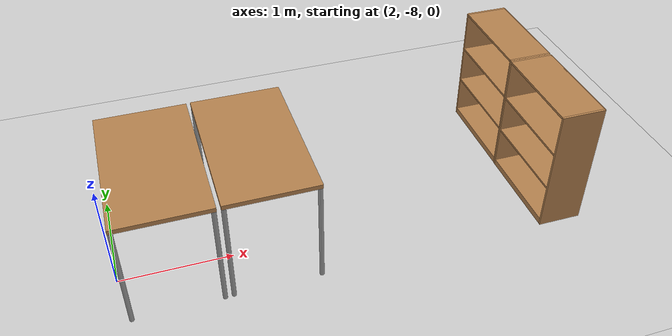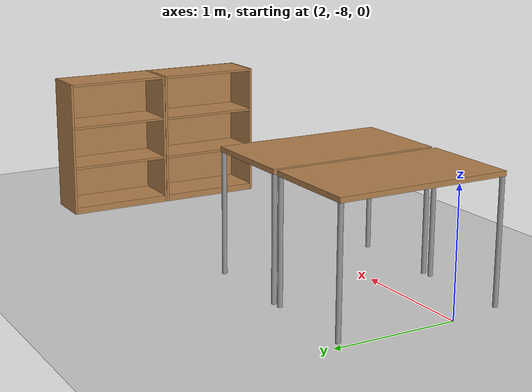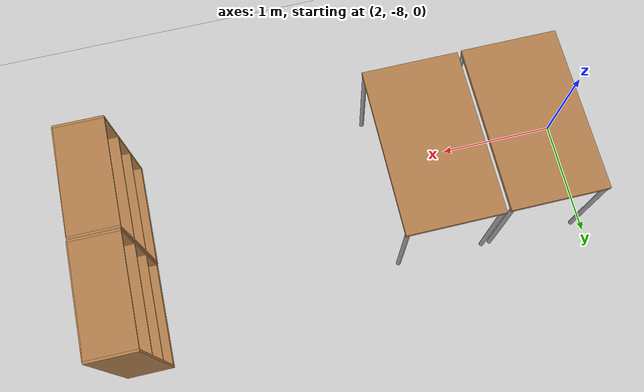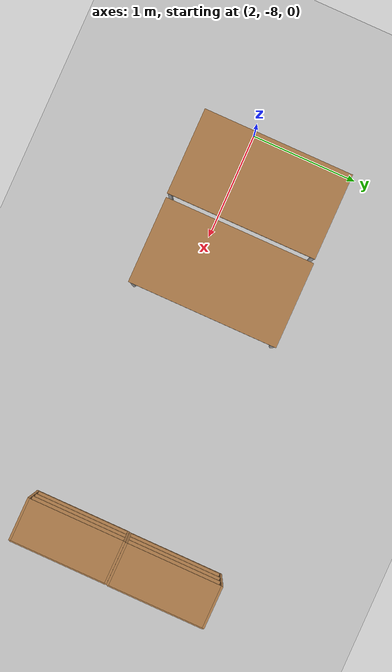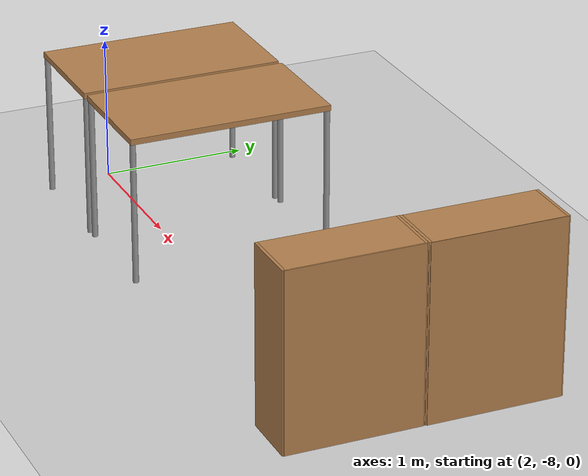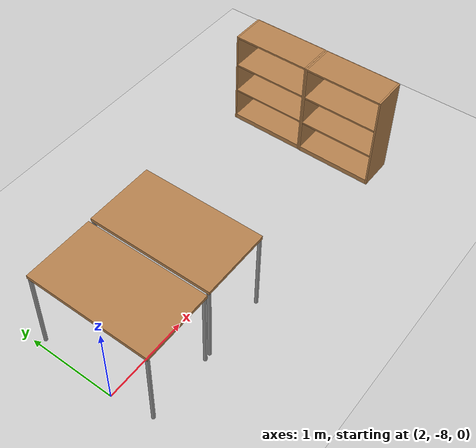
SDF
<sdf version="1.6">
 <world name="default">
  <model name="ground_plane">
   <static>1</static>
   <link name="link">
    <collision name="collision">
     <geometry><plane><normal>0 0 1</normal><size>100 100</size></plane></geometry>
     <surface><friction><ode><mu>100</mu><mu2>50</mu2></ode></friction></surface>
    </collision>
    <visual name="visual">
     <cast_shadows>0</cast_shadows>
     <geometry><plane><normal>0 0 1</normal><size>100 100</size></plane></geometry>
     <material>
      <script><uri>file://media/materials/scripts/gazebo.material</uri><name>Gazebo/Grey</name></script>
     </material>
    </visual>
   </link>
  </model>
  <model name="bookshelf_sidepose">
   <link name="link">
    <pose>0.214811 -0.123316 0 0 0 -1.57547</pose>
    <inertial><mass>1</mass></inertial>
    <visual name="visual1">
     <pose>0 0.005 0.6 0 -0 0</pose>
     <geometry><box><size>0.9 0.01 1.2</size></box></geometry>
     <material>
      <script><uri>file://media/materials/scripts/gazebo.material</uri><name>Gazebo/Wood</name></script>
      <ambient>1 1 1 1</ambient>
      <diffuse>1 1 1 1</diffuse>
      <specular>0.2 0.2 0.2 1</specular>
      <emissive>0 0 0 1</emissive>
     </material>
    </visual>
    <visual name="visual2">
     <pose>0.45 -0.195 0.6 0 -0 0</pose>
     <geometry><box><size>0.02 0.4 1.2</size></box></geometry>
     <material>
      <script><uri>file://media/materials/scripts/gazebo.material</uri><name>Gazebo/Wood</name></script>
      <ambient>1 1 1 1</ambient>
      <diffuse>1 1 1 1</diffuse>
      <specular>0.2 0.2 0.2 1</specular>
      <emissive>0 0 0 1</emissive>
     </material>
    </visual>
    <visual name="visual3">
     <pose>-0.45 -0.195 0.6 0 -0 0</pose>
     <geometry><box><size>0.02 0.4 1.2</size></box></geometry>
     <material>
      <script><uri>file://media/materials/scripts/gazebo.material</uri><name>Gazebo/Wood</name></script>
      <ambient>1 1 1 1</ambient>
      <diffuse>1 1 1 1</diffuse>
      <specular>0.2 0.2 0.2 1</specular>
      <emissive>0 0 0 1</emissive>
     </material>
    </visual>
    <visual name="visual4">
     <pose>0 -0.195 0.03 0 -0 0</pose>
     <geometry><box><size>0.88 0.4 0.06</size></box></geometry>
     <material>
      <script><uri>file://media/materials/scripts/gazebo.material</uri><name>Gazebo/Wood</name></script>
      <ambient>1 1 1 1</ambient>
      <diffuse>1 1 1 1</diffuse>
      <specular>0.2 0.2 0.2 1</specular>
      <emissive>0 0 0 1</emissive>
     </material>
    </visual>
    <visual name="visual6">
     <pose>0 -0.195 0.43 0 -0 0</pose>
     <geometry><box><size>0.88 0.4 0.02</size></box></geometry>
     <material>
      <script><uri>file://media/materials/scripts/gazebo.material</uri><name>Gazebo/Wood</name></script>
      <ambient>1 1 1 1</ambient>
      <diffuse>1 1 1 1</diffuse>
      <specular>0.2 0.2 0.2 1</specular>
      <emissive>0 0 0 1</emissive>
     </material>
    </visual>
    <visual name="visual5">
     <pose>0 -0.195 1.19 0 -0 0</pose>
     <geometry><box><size>0.88 0.4 0.02</size></box></geometry>
     <material>
      <script><uri>file://media/materials/scripts/gazebo.material</uri><name>Gazebo/Wood</name></script>
      <ambient>1 1 1 1</ambient>
      <diffuse>1 1 1 1</diffuse>
      <specular>0.2 0.2 0.2 1</specular>
      <emissive>0 0 0 1</emissive>
     </material>
    </visual>
    <visual name="visual7">
     <pose>0 -0.195 0.8 0 -0 0</pose>
     <geometry><box><size>0.88 0.4 0.02</size></box></geometry>
     <material>
      <script><uri>file://media/materials/scripts/gazebo.material</uri><name>Gazebo/Wood</name></script>
      <ambient>1 1 1 1</ambient>
      <diffuse>1 1 1 1</diffuse>
      <specular>0.2 0.2 0.2 1</specular>
      <emissive>0 0 0 1</emissive>
     </material>
    </visual>
    <collision name="back">
     <pose>0 0.005 0.6 0 -0 0</pose>
     <geometry><box><size>0.9 0.01 1.2</size></box></geometry>
     <surface>
      <friction>
       <ode><mu>1</mu><mu2>1</mu2><fdir1>0 0 0</fdir1><slip1>0</slip1><slip2>0</slip2></ode>
       <torsional>
        <coefficient>1</coefficient>
        <patch_radius>0</patch_radius>
        <surface_radius>0</surface_radius>
        <use_patch_radius>1</use_patch_radius>
        <ode><slip>0</slip></ode>
       </torsional>
      </friction>
      <bounce><restitution_coefficient>0</restitution_coefficient><threshold>1e+06</threshold></bounce>
      <contact>
       <collide_without_contact>0</collide_without_contact>
       <collide_without_contact_bitmask>1</collide_without_contact_bitmask>
       <collide_bitmask>1</collide_bitmask>
       <ode>
        <soft_cfm>0</soft_cfm>
        <soft_erp>0.2</soft_erp>
        <kp>1e+13</kp>
        <kd>1</kd>
        <max_vel>0.01</max_vel>
        <min_depth>0</min_depth>
       </ode>
       <bullet>
        <split_impulse>1</split_impulse>
        <split_impulse_penetration_threshold>-0.01</split_impulse_penetration_threshold>
        <soft_cfm>0</soft_cfm>
        <soft_erp>0.2</soft_erp>
        <kp>1e+13</kp>
        <kd>1</kd>
       </bullet>
      </contact>
     </surface>
    </collision>
    <collision name="left_side">
     <pose>0.45 -0.195 0.6 0 -0 0</pose>
     <geometry><box><size>0.02 0.4 1.2</size></box></geometry>
     <surface>
      <friction>
       <ode><mu>1</mu><mu2>1</mu2><fdir1>0 0 0</fdir1><slip1>0</slip1><slip2>0</slip2></ode>
       <torsional>
        <coefficient>1</coefficient>
        <patch_radius>0</patch_radius>
        <surface_radius>0</surface_radius>
        <use_patch_radius>1</use_patch_radius>
        <ode><slip>0</slip></ode>
       </torsional>
      </friction>
      <bounce><restitution_coefficient>0</restitution_coefficient><threshold>1e+06</threshold></bounce>
      <contact>
       <collide_without_contact>0</collide_without_contact>
       <collide_without_contact_bitmask>1</collide_without_contact_bitmask>
       <collide_bitmask>1</collide_bitmask>
       <ode>
        <soft_cfm>0</soft_cfm>
        <soft_erp>0.2</soft_erp>
        <kp>1e+13</kp>
        <kd>1</kd>
        <max_vel>0.01</max_vel>
        <min_depth>0</min_depth>
       </ode>
       <bullet>
        <split_impulse>1</split_impulse>
        <split_impulse_penetration_threshold>-0.01</split_impulse_penetration_threshold>
        <soft_cfm>0</soft_cfm>
        <soft_erp>0.2</soft_erp>
        <kp>1e+13</kp>
        <kd>1</kd>
       </bullet>
      </contact>
     </surface>
    </collision>
    <collision name="right_side">
     <pose>-0.45 -0.195 0.6 0 -0 0</pose>
     <geometry><box><size>0.02 0.4 1.2</size></box></geometry>
     <surface>
      <friction>
       <ode><mu>1</mu><mu2>1</mu2><fdir1>0 0 0</fdir1><slip1>0</slip1><slip2>0</slip2></ode>
       <torsional>
        <coefficient>1</coefficient>
        <patch_radius>0</patch_radius>
        <surface_radius>0</surface_radius>
        <use_patch_radius>1</use_patch_radius>
        <ode><slip>0</slip></ode>
       </torsional>
      </friction>
      <bounce><restitution_coefficient>0</restitution_coefficient><threshold>1e+06</threshold></bounce>
      <contact>
       <collide_without_contact>0</collide_without_contact>
       <collide_without_contact_bitmask>1</collide_without_contact_bitmask>
       <collide_bitmask>1</collide_bitmask>
       <ode>
        <soft_cfm>0</soft_cfm>
        <soft_erp>0.2</soft_erp>
        <kp>1e+13</kp>
        <kd>1</kd>
        <max_vel>0.01</max_vel>
        <min_depth>0</min_depth>
       </ode>
       <bullet>
        <split_impulse>1</split_impulse>
        <split_impulse_penetration_threshold>-0.01</split_impulse_penetration_threshold>
        <soft_cfm>0</soft_cfm>
        <soft_erp>0.2</soft_erp>
        <kp>1e+13</kp>
        <kd>1</kd>
       </bullet>
      </contact>
     </surface>
    </collision>
    <collision name="bottom">
     <pose>0 -0.195 0.03 0 -0 0</pose>
     <geometry><box><size>0.88 0.4 0.06</size></box></geometry>
     <surface>
      <friction>
       <ode><mu>1</mu><mu2>1</mu2><fdir1>0 0 0</fdir1><slip1>0</slip1><slip2>0</slip2></ode>
       <torsional>
        <coefficient>1</coefficient>
        <patch_radius>0</patch_radius>
        <surface_radius>0</surface_radius>
        <use_patch_radius>1</use_patch_radius>
        <ode><slip>0</slip></ode>
       </torsional>
      </friction>
      <bounce><restitution_coefficient>0</restitution_coefficient><threshold>1e+06</threshold></bounce>
      <contact>
       <collide_without_contact>0</collide_without_contact>
       <collide_without_contact_bitmask>1</collide_without_contact_bitmask>
       <collide_bitmask>1</collide_bitmask>
       <ode>
        <soft_cfm>0</soft_cfm>
        <soft_erp>0.2</soft_erp>
        <kp>1e+13</kp>
        <kd>1</kd>
        <max_vel>0.01</max_vel>
        <min_depth>0</min_depth>
       </ode>
       <bullet>
        <split_impulse>1</split_impulse>
        <split_impulse_penetration_threshold>-0.01</split_impulse_penetration_threshold>
        <soft_cfm>0</soft_cfm>
        <soft_erp>0.2</soft_erp>
        <kp>1e+13</kp>
        <kd>1</kd>
       </bullet>
      </contact>
     </surface>
    </collision>
    <collision name="low_shelf">
     <pose>0 -0.195 0.43 0 -0 0</pose>
     <geometry><box><size>0.88 0.4 0.02</size></box></geometry>
     <surface>
      <friction>
       <ode><mu>1</mu><mu2>1</mu2><fdir1>0 0 0</fdir1><slip1>0</slip1><slip2>0</slip2></ode>
       <torsional>
        <coefficient>1</coefficient>
        <patch_radius>0</patch_radius>
        <surface_radius>0</surface_radius>
        <use_patch_radius>1</use_patch_radius>
        <ode><slip>0</slip></ode>
       </torsional>
      </friction>
      <bounce><restitution_coefficient>0</restitution_coefficient><threshold>1e+06</threshold></bounce>
      <contact>
       <collide_without_contact>0</collide_without_contact>
       <collide_without_contact_bitmask>1</collide_without_contact_bitmask>
       <collide_bitmask>1</collide_bitmask>
       <ode>
        <soft_cfm>0</soft_cfm>
        <soft_erp>0.2</soft_erp>
        <kp>1e+13</kp>
        <kd>1</kd>
        <max_vel>0.01</max_vel>
        <min_depth>0</min_depth>
       </ode>
       <bullet>
        <split_impulse>1</split_impulse>
        <split_impulse_penetration_threshold>-0.01</split_impulse_penetration_threshold>
        <soft_cfm>0</soft_cfm>
        <soft_erp>0.2</soft_erp>
        <kp>1e+13</kp>
        <kd>1</kd>
       </bullet>
      </contact>
     </surface>
    </collision>
    <collision name="top">
     <pose>0 -0.195 1.19 0 -0 0</pose>
     <geometry><box><size>0.88 0.4 0.02</size></box></geometry>
     <surface>
      <friction>
       <ode><mu>1</mu><mu2>1</mu2><fdir1>0 0 0</fdir1><slip1>0</slip1><slip2>0</slip2></ode>
       <torsional>
        <coefficient>1</coefficient>
        <patch_radius>0</patch_radius>
        <surface_radius>0</surface_radius>
        <use_patch_radius>1</use_patch_radius>
        <ode><slip>0</slip></ode>
       </torsional>
      </friction>
      <bounce><restitution_coefficient>0</restitution_coefficient><threshold>1e+06</threshold></bounce>
      <contact>
       <collide_without_contact>0</collide_without_contact>
       <collide_without_contact_bitmask>1</collide_without_contact_bitmask>
       <collide_bitmask>1</collide_bitmask>
       <ode>
        <soft_cfm>0</soft_cfm>
        <soft_erp>0.2</soft_erp>
        <kp>1e+13</kp>
        <kd>1</kd>
        <max_vel>0.01</max_vel>
        <min_depth>0</min_depth>
       </ode>
       <bullet>
        <split_impulse>1</split_impulse>
        <split_impulse_penetration_threshold>-0.01</split_impulse_penetration_threshold>
        <soft_cfm>0</soft_cfm>
        <soft_erp>0.2</soft_erp>
        <kp>1e+13</kp>
        <kd>1</kd>
       </bullet>
      </contact>
     </surface>
    </collision>
    <collision name="high_shelf">
     <pose>0 -0.195 0.8 0 -0 0</pose>
     <geometry><box><size>0.88 0.4 0.02</size></box></geometry>
     <surface>
      <friction>
       <ode><mu>1</mu><mu2>1</mu2><fdir1>0 0 0</fdir1><slip1>0</slip1><slip2>0</slip2></ode>
       <torsional>
        <coefficient>1</coefficient>
        <patch_radius>0</patch_radius>
        <surface_radius>0</surface_radius>
        <use_patch_radius>1</use_patch_radius>
        <ode><slip>0</slip></ode>
       </torsional>
      </friction>
      <bounce><restitution_coefficient>0</restitution_coefficient><threshold>1e+06</threshold></bounce>
      <contact>
       <collide_without_contact>0</collide_without_contact>
       <collide_without_contact_bitmask>1</collide_without_contact_bitmask>
       <collide_bitmask>1</collide_bitmask>
       <ode>
        <soft_cfm>0</soft_cfm>
        <soft_erp>0.2</soft_erp>
        <kp>1e+13</kp>
        <kd>1</kd>
        <max_vel>0.01</max_vel>
        <min_depth>0</min_depth>
       </ode>
       <bullet>
        <split_impulse>1</split_impulse>
        <split_impulse_penetration_threshold>-0.01</split_impulse_penetration_threshold>
        <soft_cfm>0</soft_cfm>
        <soft_erp>0.2</soft_erp>
        <kp>1e+13</kp>
        <kd>1</kd>
       </bullet>
      </contact>
     </surface>
    </collision>
   </link>
   <static>1</static>
   <pose>5.91657 -7.89874 0 0 -0 0</pose>
  </model>
  <model name="bookshelf_sidepose_clone">
   <link name="link">
    <pose>0.214811 -0.123316 0 0 0 -1.57547</pose>
    <inertial><mass>1</mass></inertial>
    <visual name="visual1">
     <pose>0 0.005 0.6 0 -0 0</pose>
     <geometry><box><size>0.9 0.01 1.2</size></box></geometry>
     <material>
      <script><uri>file://media/materials/scripts/gazebo.material</uri><name>Gazebo/Wood</name></script>
      <ambient>1 1 1 1</ambient>
      <diffuse>1 1 1 1</diffuse>
      <specular>0.2 0.2 0.2 1</specular>
      <emissive>0 0 0 1</emissive>
     </material>
    </visual>
    <visual name="visual2">
     <pose>0.45 -0.195 0.6 0 -0 0</pose>
     <geometry><box><size>0.02 0.4 1.2</size></box></geometry>
     <material>
      <script><uri>file://media/materials/scripts/gazebo.material</uri><name>Gazebo/Wood</name></script>
      <ambient>1 1 1 1</ambient>
      <diffuse>1 1 1 1</diffuse>
      <specular>0.2 0.2 0.2 1</specular>
      <emissive>0 0 0 1</emissive>
     </material>
    </visual>
    <visual name="visual3">
     <pose>-0.45 -0.195 0.6 0 -0 0</pose>
     <geometry><box><size>0.02 0.4 1.2</size></box></geometry>
     <material>
      <script><uri>file://media/materials/scripts/gazebo.material</uri><name>Gazebo/Wood</name></script>
      <ambient>1 1 1 1</ambient>
      <diffuse>1 1 1 1</diffuse>
      <specular>0.2 0.2 0.2 1</specular>
      <emissive>0 0 0 1</emissive>
     </material>
    </visual>
    <visual name="visual4">
     <pose>0 -0.195 0.03 0 -0 0</pose>
     <geometry><box><size>0.88 0.4 0.06</size></box></geometry>
     <material>
      <script><uri>file://media/materials/scripts/gazebo.material</uri><name>Gazebo/Wood</name></script>
      <ambient>1 1 1 1</ambient>
      <diffuse>1 1 1 1</diffuse>
      <specular>0.2 0.2 0.2 1</specular>
      <emissive>0 0 0 1</emissive>
     </material>
    </visual>
    <visual name="visual6">
     <pose>0 -0.195 0.43 0 -0 0</pose>
     <geometry><box><size>0.88 0.4 0.02</size></box></geometry>
     <material>
      <script><uri>file://media/materials/scripts/gazebo.material</uri><name>Gazebo/Wood</name></script>
      <ambient>1 1 1 1</ambient>
      <diffuse>1 1 1 1</diffuse>
      <specular>0.2 0.2 0.2 1</specular>
      <emissive>0 0 0 1</emissive>
     </material>
    </visual>
    <visual name="visual5">
     <pose>0 -0.195 1.19 0 -0 0</pose>
     <geometry><box><size>0.88 0.4 0.02</size></box></geometry>
     <material>
      <script><uri>file://media/materials/scripts/gazebo.material</uri><name>Gazebo/Wood</name></script>
      <ambient>1 1 1 1</ambient>
      <diffuse>1 1 1 1</diffuse>
      <specular>0.2 0.2 0.2 1</specular>
      <emissive>0 0 0 1</emissive>
     </material>
    </visual>
    <visual name="visual7">
     <pose>0 -0.195 0.8 0 -0 0</pose>
     <geometry><box><size>0.88 0.4 0.02</size></box></geometry>
     <material>
      <script><uri>file://media/materials/scripts/gazebo.material</uri><name>Gazebo/Wood</name></script>
      <ambient>1 1 1 1</ambient>
      <diffuse>1 1 1 1</diffuse>
      <specular>0.2 0.2 0.2 1</specular>
      <emissive>0 0 0 1</emissive>
     </material>
    </visual>
    <collision name="back">
     <pose>0 0.005 0.6 0 -0 0</pose>
     <geometry><box><size>0.9 0.01 1.2</size></box></geometry>
     <surface>
      <friction>
       <ode><mu>1</mu><mu2>1</mu2><fdir1>0 0 0</fdir1><slip1>0</slip1><slip2>0</slip2></ode>
       <torsional>
        <coefficient>1</coefficient>
        <patch_radius>0</patch_radius>
        <surface_radius>0</surface_radius>
        <use_patch_radius>1</use_patch_radius>
        <ode><slip>0</slip></ode>
       </torsional>
      </friction>
      <bounce><restitution_coefficient>0</restitution_coefficient><threshold>1e+06</threshold></bounce>
      <contact>
       <collide_without_contact>0</collide_without_contact>
       <collide_without_contact_bitmask>1</collide_without_contact_bitmask>
       <collide_bitmask>1</collide_bitmask>
       <ode>
        <soft_cfm>0</soft_cfm>
        <soft_erp>0.2</soft_erp>
        <kp>1e+13</kp>
        <kd>1</kd>
        <max_vel>0.01</max_vel>
        <min_depth>0</min_depth>
       </ode>
       <bullet>
        <split_impulse>1</split_impulse>
        <split_impulse_penetration_threshold>-0.01</split_impulse_penetration_threshold>
        <soft_cfm>0</soft_cfm>
        <soft_erp>0.2</soft_erp>
        <kp>1e+13</kp>
        <kd>1</kd>
       </bullet>
      </contact>
     </surface>
    </collision>
    <collision name="left_side">
     <pose>0.45 -0.195 0.6 0 -0 0</pose>
     <geometry><box><size>0.02 0.4 1.2</size></box></geometry>
     <surface>
      <friction>
       <ode><mu>1</mu><mu2>1</mu2><fdir1>0 0 0</fdir1><slip1>0</slip1><slip2>0</slip2></ode>
       <torsional>
        <coefficient>1</coefficient>
        <patch_radius>0</patch_radius>
        <surface_radius>0</surface_radius>
        <use_patch_radius>1</use_patch_radius>
        <ode><slip>0</slip></ode>
       </torsional>
      </friction>
      <bounce><restitution_coefficient>0</restitution_coefficient><threshold>1e+06</threshold></bounce>
      <contact>
       <collide_without_contact>0</collide_without_contact>
       <collide_without_contact_bitmask>1</collide_without_contact_bitmask>
       <collide_bitmask>1</collide_bitmask>
       <ode>
        <soft_cfm>0</soft_cfm>
        <soft_erp>0.2</soft_erp>
        <kp>1e+13</kp>
        <kd>1</kd>
        <max_vel>0.01</max_vel>
        <min_depth>0</min_depth>
       </ode>
       <bullet>
        <split_impulse>1</split_impulse>
        <split_impulse_penetration_threshold>-0.01</split_impulse_penetration_threshold>
        <soft_cfm>0</soft_cfm>
        <soft_erp>0.2</soft_erp>
        <kp>1e+13</kp>
        <kd>1</kd>
       </bullet>
      </contact>
     </surface>
    </collision>
    <collision name="right_side">
     <pose>-0.45 -0.195 0.6 0 -0 0</pose>
     <geometry><box><size>0.02 0.4 1.2</size></box></geometry>
     <surface>
      <friction>
       <ode><mu>1</mu><mu2>1</mu2><fdir1>0 0 0</fdir1><slip1>0</slip1><slip2>0</slip2></ode>
       <torsional>
        <coefficient>1</coefficient>
        <patch_radius>0</patch_radius>
        <surface_radius>0</surface_radius>
        <use_patch_radius>1</use_patch_radius>
        <ode><slip>0</slip></ode>
       </torsional>
      </friction>
      <bounce><restitution_coefficient>0</restitution_coefficient><threshold>1e+06</threshold></bounce>
      <contact>
       <collide_without_contact>0</collide_without_contact>
       <collide_without_contact_bitmask>1</collide_without_contact_bitmask>
       <collide_bitmask>1</collide_bitmask>
       <ode>
        <soft_cfm>0</soft_cfm>
        <soft_erp>0.2</soft_erp>
        <kp>1e+13</kp>
        <kd>1</kd>
        <max_vel>0.01</max_vel>
        <min_depth>0</min_depth>
       </ode>
       <bullet>
        <split_impulse>1</split_impulse>
        <split_impulse_penetration_threshold>-0.01</split_impulse_penetration_threshold>
        <soft_cfm>0</soft_cfm>
        <soft_erp>0.2</soft_erp>
        <kp>1e+13</kp>
        <kd>1</kd>
       </bullet>
      </contact>
     </surface>
    </collision>
    <collision name="bottom">
     <pose>0 -0.195 0.03 0 -0 0</pose>
     <geometry><box><size>0.88 0.4 0.06</size></box></geometry>
     <surface>
      <friction>
       <ode><mu>1</mu><mu2>1</mu2><fdir1>0 0 0</fdir1><slip1>0</slip1><slip2>0</slip2></ode>
       <torsional>
        <coefficient>1</coefficient>
        <patch_radius>0</patch_radius>
        <surface_radius>0</surface_radius>
        <use_patch_radius>1</use_patch_radius>
        <ode><slip>0</slip></ode>
       </torsional>
      </friction>
      <bounce><restitution_coefficient>0</restitution_coefficient><threshold>1e+06</threshold></bounce>
      <contact>
       <collide_without_contact>0</collide_without_contact>
       <collide_without_contact_bitmask>1</collide_without_contact_bitmask>
       <collide_bitmask>1</collide_bitmask>
       <ode>
        <soft_cfm>0</soft_cfm>
        <soft_erp>0.2</soft_erp>
        <kp>1e+13</kp>
        <kd>1</kd>
        <max_vel>0.01</max_vel>
        <min_depth>0</min_depth>
       </ode>
       <bullet>
        <split_impulse>1</split_impulse>
        <split_impulse_penetration_threshold>-0.01</split_impulse_penetration_threshold>
        <soft_cfm>0</soft_cfm>
        <soft_erp>0.2</soft_erp>
        <kp>1e+13</kp>
        <kd>1</kd>
       </bullet>
      </contact>
     </surface>
    </collision>
    <collision name="low_shelf">
     <pose>0 -0.195 0.43 0 -0 0</pose>
     <geometry><box><size>0.88 0.4 0.02</size></box></geometry>
     <surface>
      <friction>
       <ode><mu>1</mu><mu2>1</mu2><fdir1>0 0 0</fdir1><slip1>0</slip1><slip2>0</slip2></ode>
       <torsional>
        <coefficient>1</coefficient>
        <patch_radius>0</patch_radius>
        <surface_radius>0</surface_radius>
        <use_patch_radius>1</use_patch_radius>
        <ode><slip>0</slip></ode>
       </torsional>
      </friction>
      <bounce><restitution_coefficient>0</restitution_coefficient><threshold>1e+06</threshold></bounce>
      <contact>
       <collide_without_contact>0</collide_without_contact>
       <collide_without_contact_bitmask>1</collide_without_contact_bitmask>
       <collide_bitmask>1</collide_bitmask>
       <ode>
        <soft_cfm>0</soft_cfm>
        <soft_erp>0.2</soft_erp>
        <kp>1e+13</kp>
        <kd>1</kd>
        <max_vel>0.01</max_vel>
        <min_depth>0</min_depth>
       </ode>
       <bullet>
        <split_impulse>1</split_impulse>
        <split_impulse_penetration_threshold>-0.01</split_impulse_penetration_threshold>
        <soft_cfm>0</soft_cfm>
        <soft_erp>0.2</soft_erp>
        <kp>1e+13</kp>
        <kd>1</kd>
       </bullet>
      </contact>
     </surface>
    </collision>
    <collision name="top">
     <pose>0 -0.195 1.19 0 -0 0</pose>
     <geometry><box><size>0.88 0.4 0.02</size></box></geometry>
     <surface>
      <friction>
       <ode><mu>1</mu><mu2>1</mu2><fdir1>0 0 0</fdir1><slip1>0</slip1><slip2>0</slip2></ode>
       <torsional>
        <coefficient>1</coefficient>
        <patch_radius>0</patch_radius>
        <surface_radius>0</surface_radius>
        <use_patch_radius>1</use_patch_radius>
        <ode><slip>0</slip></ode>
       </torsional>
      </friction>
      <bounce><restitution_coefficient>0</restitution_coefficient><threshold>1e+06</threshold></bounce>
      <contact>
       <collide_without_contact>0</collide_without_contact>
       <collide_without_contact_bitmask>1</collide_without_contact_bitmask>
       <collide_bitmask>1</collide_bitmask>
       <ode>
        <soft_cfm>0</soft_cfm>
        <soft_erp>0.2</soft_erp>
        <kp>1e+13</kp>
        <kd>1</kd>
        <max_vel>0.01</max_vel>
        <min_depth>0</min_depth>
       </ode>
       <bullet>
        <split_impulse>1</split_impulse>
        <split_impulse_penetration_threshold>-0.01</split_impulse_penetration_threshold>
        <soft_cfm>0</soft_cfm>
        <soft_erp>0.2</soft_erp>
        <kp>1e+13</kp>
        <kd>1</kd>
       </bullet>
      </contact>
     </surface>
    </collision>
    <collision name="high_shelf">
     <pose>0 -0.195 0.8 0 -0 0</pose>
     <geometry><box><size>0.88 0.4 0.02</size></box></geometry>
     <surface>
      <friction>
       <ode><mu>1</mu><mu2>1</mu2><fdir1>0 0 0</fdir1><slip1>0</slip1><slip2>0</slip2></ode>
       <torsional>
        <coefficient>1</coefficient>
        <patch_radius>0</patch_radius>
        <surface_radius>0</surface_radius>
        <use_patch_radius>1</use_patch_radius>
        <ode><slip>0</slip></ode>
       </torsional>
      </friction>
      <bounce><restitution_coefficient>0</restitution_coefficient><threshold>1e+06</threshold></bounce>
      <contact>
       <collide_without_contact>0</collide_without_contact>
       <collide_without_contact_bitmask>1</collide_without_contact_bitmask>
       <collide_bitmask>1</collide_bitmask>
       <ode>
        <soft_cfm>0</soft_cfm>
        <soft_erp>0.2</soft_erp>
        <kp>1e+13</kp>
        <kd>1</kd>
        <max_vel>0.01</max_vel>
        <min_depth>0</min_depth>
       </ode>
       <bullet>
        <split_impulse>1</split_impulse>
        <split_impulse_penetration_threshold>-0.01</split_impulse_penetration_threshold>
        <soft_cfm>0</soft_cfm>
        <soft_erp>0.2</soft_erp>
        <kp>1e+13</kp>
        <kd>1</kd>
       </bullet>
      </contact>
     </surface>
    </collision>
   </link>
   <static>1</static>
   <pose>5.92407 -6.97829 0 0 -0 0</pose>
  </model>
  <model name="table_vert_1">
   <link name="link">
    <pose>0 0 0 0 0 -1.56614</pose>
    <inertial>
     <inertia><ixx>1</ixx><ixy>0</ixy><ixz>0</ixz><iyy>1</iyy><iyz>0</iyz><izz>1</izz></inertia>
     <mass>1</mass>
    </inertial>
    <visual name="visual1">
     <pose>0 0 1 0 -0 0</pose>
     <geometry><box><size>1.4 0.8 0.04</size></box></geometry>
     <material>
      <script><uri>file://media/materials/scripts/gazebo.material</uri><name>Gazebo/Wood</name></script>
      <ambient>1 1 1 1</ambient>
      <diffuse>1 1 1 1</diffuse>
      <specular>0.2 0.2 0.2 1</specular>
      <emissive>0 0 0 1</emissive>
     </material>
    </visual>
    <visual name="front_left_leg">
     <pose>0.68 0.38 0.5 0 -0 0</pose>
     <geometry><cylinder><radius>0.02</radius><length>1</length></cylinder></geometry>
     <material>
      <script><uri>file://media/materials/scripts/gazebo.material</uri><name>Gazebo/Grey</name></script>
      <ambient>0.3 0.3 0.3 1</ambient>
      <diffuse>0.7 0.7 0.7 1</diffuse>
      <specular>0.01 0.01 0.01 1</specular>
      <emissive>0 0 0 1</emissive>
     </material>
    </visual>
    <visual name="front_right_leg">
     <pose>0.68 -0.38 0.5 0 -0 0</pose>
     <geometry><cylinder><radius>0.02</radius><length>1</length></cylinder></geometry>
     <material>
      <script><uri>file://media/materials/scripts/gazebo.material</uri><name>Gazebo/Grey</name></script>
      <ambient>0.3 0.3 0.3 1</ambient>
      <diffuse>0.7 0.7 0.7 1</diffuse>
      <specular>0.01 0.01 0.01 1</specular>
      <emissive>0 0 0 1</emissive>
     </material>
    </visual>
    <visual name="back_right_leg">
     <pose>-0.68 -0.38 0.5 0 -0 0</pose>
     <geometry><cylinder><radius>0.02</radius><length>1</length></cylinder></geometry>
     <material>
      <script><uri>file://media/materials/scripts/gazebo.material</uri><name>Gazebo/Grey</name></script>
      <ambient>0.3 0.3 0.3 1</ambient>
      <diffuse>0.7 0.7 0.7 1</diffuse>
      <specular>0.01 0.01 0.01 1</specular>
      <emissive>0 0 0 1</emissive>
     </material>
    </visual>
    <visual name="back_left_leg">
     <pose>-0.68 0.38 0.5 0 -0 0</pose>
     <geometry><cylinder><radius>0.02</radius><length>1</length></cylinder></geometry>
     <material>
      <script><uri>file://media/materials/scripts/gazebo.material</uri><name>Gazebo/Grey</name></script>
      <ambient>0.3 0.3 0.3 1</ambient>
      <diffuse>0.7 0.7 0.7 1</diffuse>
      <specular>0.01 0.01 0.01 1</specular>
      <emissive>0 0 0 1</emissive>
     </material>
    </visual>
    <collision name="surface">
     <pose>0 0 1 0 -0 0</pose>
     <geometry><box><size>1.5 0.8 0.03</size></box></geometry>
     <surface>
      <friction>
       <ode><mu>0.6</mu><mu2>0.6</mu2><fdir1>0 0 0</fdir1><slip1>0</slip1><slip2>0</slip2></ode>
       <torsional>
        <coefficient>1</coefficient>
        <patch_radius>0</patch_radius>
        <surface_radius>0</surface_radius>
        <use_patch_radius>1</use_patch_radius>
        <ode><slip>0</slip></ode>
       </torsional>
      </friction>
      <bounce><restitution_coefficient>0</restitution_coefficient><threshold>1e+06</threshold></bounce>
      <contact>
       <collide_without_contact>0</collide_without_contact>
       <collide_without_contact_bitmask>1</collide_without_contact_bitmask>
       <collide_bitmask>1</collide_bitmask>
       <ode>
        <soft_cfm>0</soft_cfm>
        <soft_erp>0.2</soft_erp>
        <kp>1e+13</kp>
        <kd>1</kd>
        <max_vel>0.01</max_vel>
        <min_depth>0</min_depth>
       </ode>
       <bullet>
        <split_impulse>1</split_impulse>
        <split_impulse_penetration_threshold>-0.01</split_impulse_penetration_threshold>
        <soft_cfm>0</soft_cfm>
        <soft_erp>0.2</soft_erp>
        <kp>1e+13</kp>
        <kd>1</kd>
       </bullet>
      </contact>
     </surface>
    </collision>
    <collision name="front_left_leg">
     <pose>0.68 0.38 0.5 0 -0 0</pose>
     <geometry><cylinder><radius>0.02</radius><length>1</length></cylinder></geometry>
     <surface>
      <friction>
       <ode><mu>1</mu><mu2>1</mu2><fdir1>0 0 0</fdir1><slip1>0</slip1><slip2>0</slip2></ode>
       <torsional>
        <coefficient>1</coefficient>
        <patch_radius>0</patch_radius>
        <surface_radius>0</surface_radius>
        <use_patch_radius>1</use_patch_radius>
        <ode><slip>0</slip></ode>
       </torsional>
      </friction>
      <bounce><restitution_coefficient>0</restitution_coefficient><threshold>1e+06</threshold></bounce>
      <contact>
       <collide_without_contact>0</collide_without_contact>
       <collide_without_contact_bitmask>1</collide_without_contact_bitmask>
       <collide_bitmask>1</collide_bitmask>
       <ode>
        <soft_cfm>0</soft_cfm>
        <soft_erp>0.2</soft_erp>
        <kp>1e+13</kp>
        <kd>1</kd>
        <max_vel>0.01</max_vel>
        <min_depth>0</min_depth>
       </ode>
       <bullet>
        <split_impulse>1</split_impulse>
        <split_impulse_penetration_threshold>-0.01</split_impulse_penetration_threshold>
        <soft_cfm>0</soft_cfm>
        <soft_erp>0.2</soft_erp>
        <kp>1e+13</kp>
        <kd>1</kd>
       </bullet>
      </contact>
     </surface>
    </collision>
    <collision name="front_right_leg">
     <pose>0.68 -0.38 0.5 0 -0 0</pose>
     <geometry><cylinder><radius>0.02</radius><length>1</length></cylinder></geometry>
     <surface>
      <friction>
       <ode><mu>1</mu><mu2>1</mu2><fdir1>0 0 0</fdir1><slip1>0</slip1><slip2>0</slip2></ode>
       <torsional>
        <coefficient>1</coefficient>
        <patch_radius>0</patch_radius>
        <surface_radius>0</surface_radius>
        <use_patch_radius>1</use_patch_radius>
        <ode><slip>0</slip></ode>
       </torsional>
      </friction>
      <bounce><restitution_coefficient>0</restitution_coefficient><threshold>1e+06</threshold></bounce>
      <contact>
       <collide_without_contact>0</collide_without_contact>
       <collide_without_contact_bitmask>1</collide_without_contact_bitmask>
       <collide_bitmask>1</collide_bitmask>
       <ode>
        <soft_cfm>0</soft_cfm>
        <soft_erp>0.2</soft_erp>
        <kp>1e+13</kp>
        <kd>1</kd>
        <max_vel>0.01</max_vel>
        <min_depth>0</min_depth>
       </ode>
       <bullet>
        <split_impulse>1</split_impulse>
        <split_impulse_penetration_threshold>-0.01</split_impulse_penetration_threshold>
        <soft_cfm>0</soft_cfm>
        <soft_erp>0.2</soft_erp>
        <kp>1e+13</kp>
        <kd>1</kd>
       </bullet>
      </contact>
     </surface>
    </collision>
    <collision name="back_right_leg">
     <pose>-0.68 -0.38 0.5 0 -0 0</pose>
     <geometry><cylinder><radius>0.02</radius><length>1</length></cylinder></geometry>
     <surface>
      <friction>
       <ode><mu>1</mu><mu2>1</mu2><fdir1>0 0 0</fdir1><slip1>0</slip1><slip2>0</slip2></ode>
       <torsional>
        <coefficient>1</coefficient>
        <patch_radius>0</patch_radius>
        <surface_radius>0</surface_radius>
        <use_patch_radius>1</use_patch_radius>
        <ode><slip>0</slip></ode>
       </torsional>
      </friction>
      <bounce><restitution_coefficient>0</restitution_coefficient><threshold>1e+06</threshold></bounce>
      <contact>
       <collide_without_contact>0</collide_without_contact>
       <collide_without_contact_bitmask>1</collide_without_contact_bitmask>
       <collide_bitmask>1</collide_bitmask>
       <ode>
        <soft_cfm>0</soft_cfm>
        <soft_erp>0.2</soft_erp>
        <kp>1e+13</kp>
        <kd>1</kd>
        <max_vel>0.01</max_vel>
        <min_depth>0</min_depth>
       </ode>
       <bullet>
        <split_impulse>1</split_impulse>
        <split_impulse_penetration_threshold>-0.01</split_impulse_penetration_threshold>
        <soft_cfm>0</soft_cfm>
        <soft_erp>0.2</soft_erp>
        <kp>1e+13</kp>
        <kd>1</kd>
       </bullet>
      </contact>
     </surface>
    </collision>
    <collision name="back_left_leg">
     <pose>-0.68 0.38 0.5 0 -0 0</pose>
     <geometry><cylinder><radius>0.02</radius><length>1</length></cylinder></geometry>
     <surface>
      <friction>
       <ode><mu>1</mu><mu2>1</mu2><fdir1>0 0 0</fdir1><slip1>0</slip1><slip2>0</slip2></ode>
       <torsional>
        <coefficient>1</coefficient>
        <patch_radius>0</patch_radius>
        <surface_radius>0</surface_radius>
        <use_patch_radius>1</use_patch_radius>
        <ode><slip>0</slip></ode>
       </torsional>
      </friction>
      <bounce><restitution_coefficient>0</restitution_coefficient><threshold>1e+06</threshold></bounce>
      <contact>
       <collide_without_contact>0</collide_without_contact>
       <collide_without_contact_bitmask>1</collide_without_contact_bitmask>
       <collide_bitmask>1</collide_bitmask>
       <ode>
        <soft_cfm>0</soft_cfm>
        <soft_erp>0.2</soft_erp>
        <kp>1e+13</kp>
        <kd>1</kd>
        <max_vel>0.01</max_vel>
        <min_depth>0</min_depth>
       </ode>
       <bullet>
        <split_impulse>1</split_impulse>
        <split_impulse_penetration_threshold>-0.01</split_impulse_penetration_threshold>
        <soft_cfm>0</soft_cfm>
        <soft_erp>0.2</soft_erp>
        <kp>1e+13</kp>
        <kd>1</kd>
       </bullet>
      </contact>
     </surface>
    </collision>
   </link>
   <static>0</static>
   <pose>3.29421 -7.75907 -9e-06 0 0 -0.00466</pose>
  </model>
  <model name="table_vert_1_clone">
   <link name="link">
    <pose>0 0 0 0 0 -1.56614</pose>
    <inertial>
     <inertia><ixx>1</ixx><ixy>0</ixy><ixz>0</ixz><iyy>1</iyy><iyz>0</iyz><izz>1</izz></inertia>
     <mass>1</mass>
    </inertial>
    <visual name="visual1">
     <pose>0 0 1 0 -0 0</pose>
     <geometry><box><size>1.4 0.8 0.04</size></box></geometry>
     <material>
      <script><uri>file://media/materials/scripts/gazebo.material</uri><name>Gazebo/Wood</name></script>
      <ambient>1 1 1 1</ambient>
      <diffuse>1 1 1 1</diffuse>
      <specular>0.2 0.2 0.2 1</specular>
      <emissive>0 0 0 1</emissive>
     </material>
    </visual>
    <visual name="front_left_leg">
     <pose>0.68 0.38 0.5 0 -0 0</pose>
     <geometry><cylinder><radius>0.02</radius><length>1</length></cylinder></geometry>
     <material>
      <script><uri>file://media/materials/scripts/gazebo.material</uri><name>Gazebo/Grey</name></script>
      <ambient>0.3 0.3 0.3 1</ambient>
      <diffuse>0.7 0.7 0.7 1</diffuse>
      <specular>0.01 0.01 0.01 1</specular>
      <emissive>0 0 0 1</emissive>
     </material>
    </visual>
    <visual name="front_right_leg">
     <pose>0.68 -0.38 0.5 0 -0 0</pose>
     <geometry><cylinder><radius>0.02</radius><length>1</length></cylinder></geometry>
     <material>
      <script><uri>file://media/materials/scripts/gazebo.material</uri><name>Gazebo/Grey</name></script>
      <ambient>0.3 0.3 0.3 1</ambient>
      <diffuse>0.7 0.7 0.7 1</diffuse>
      <specular>0.01 0.01 0.01 1</specular>
      <emissive>0 0 0 1</emissive>
     </material>
    </visual>
    <visual name="back_right_leg">
     <pose>-0.68 -0.38 0.5 0 -0 0</pose>
     <geometry><cylinder><radius>0.02</radius><length>1</length></cylinder></geometry>
     <material>
      <script><uri>file://media/materials/scripts/gazebo.material</uri><name>Gazebo/Grey</name></script>
      <ambient>0.3 0.3 0.3 1</ambient>
      <diffuse>0.7 0.7 0.7 1</diffuse>
      <specular>0.01 0.01 0.01 1</specular>
      <emissive>0 0 0 1</emissive>
     </material>
    </visual>
    <visual name="back_left_leg">
     <pose>-0.68 0.38 0.5 0 -0 0</pose>
     <geometry><cylinder><radius>0.02</radius><length>1</length></cylinder></geometry>
     <material>
      <script><uri>file://media/materials/scripts/gazebo.material</uri><name>Gazebo/Grey</name></script>
      <ambient>0.3 0.3 0.3 1</ambient>
      <diffuse>0.7 0.7 0.7 1</diffuse>
      <specular>0.01 0.01 0.01 1</specular>
      <emissive>0 0 0 1</emissive>
     </material>
    </visual>
    <collision name="surface">
     <pose>0 0 1 0 -0 0</pose>
     <geometry><box><size>1.5 0.8 0.03</size></box></geometry>
     <surface>
      <friction>
       <ode><mu>0.6</mu><mu2>0.6</mu2><fdir1>0 0 0</fdir1><slip1>0</slip1><slip2>0</slip2></ode>
       <torsional>
        <coefficient>1</coefficient>
        <patch_radius>0</patch_radius>
        <surface_radius>0</surface_radius>
        <use_patch_radius>1</use_patch_radius>
        <ode><slip>0</slip></ode>
       </torsional>
      </friction>
      <bounce><restitution_coefficient>0</restitution_coefficient><threshold>1e+06</threshold></bounce>
      <contact>
       <collide_without_contact>0</collide_without_contact>
       <collide_without_contact_bitmask>1</collide_without_contact_bitmask>
       <collide_bitmask>1</collide_bitmask>
       <ode>
        <soft_cfm>0</soft_cfm>
        <soft_erp>0.2</soft_erp>
        <kp>1e+13</kp>
        <kd>1</kd>
        <max_vel>0.01</max_vel>
        <min_depth>0</min_depth>
       </ode>
       <bullet>
        <split_impulse>1</split_impulse>
        <split_impulse_penetration_threshold>-0.01</split_impulse_penetration_threshold>
        <soft_cfm>0</soft_cfm>
        <soft_erp>0.2</soft_erp>
        <kp>1e+13</kp>
        <kd>1</kd>
       </bullet>
      </contact>
     </surface>
    </collision>
    <collision name="front_left_leg">
     <pose>0.68 0.38 0.5 0 -0 0</pose>
     <geometry><cylinder><radius>0.02</radius><length>1</length></cylinder></geometry>
     <surface>
      <friction>
       <ode><mu>1</mu><mu2>1</mu2><fdir1>0 0 0</fdir1><slip1>0</slip1><slip2>0</slip2></ode>
       <torsional>
        <coefficient>1</coefficient>
        <patch_radius>0</patch_radius>
        <surface_radius>0</surface_radius>
        <use_patch_radius>1</use_patch_radius>
        <ode><slip>0</slip></ode>
       </torsional>
      </friction>
      <bounce><restitution_coefficient>0</restitution_coefficient><threshold>1e+06</threshold></bounce>
      <contact>
       <collide_without_contact>0</collide_without_contact>
       <collide_without_contact_bitmask>1</collide_without_contact_bitmask>
       <collide_bitmask>1</collide_bitmask>
       <ode>
        <soft_cfm>0</soft_cfm>
        <soft_erp>0.2</soft_erp>
        <kp>1e+13</kp>
        <kd>1</kd>
        <max_vel>0.01</max_vel>
        <min_depth>0</min_depth>
       </ode>
       <bullet>
        <split_impulse>1</split_impulse>
        <split_impulse_penetration_threshold>-0.01</split_impulse_penetration_threshold>
        <soft_cfm>0</soft_cfm>
        <soft_erp>0.2</soft_erp>
        <kp>1e+13</kp>
        <kd>1</kd>
       </bullet>
      </contact>
     </surface>
    </collision>
    <collision name="front_right_leg">
     <pose>0.68 -0.38 0.5 0 -0 0</pose>
     <geometry><cylinder><radius>0.02</radius><length>1</length></cylinder></geometry>
     <surface>
      <friction>
       <ode><mu>1</mu><mu2>1</mu2><fdir1>0 0 0</fdir1><slip1>0</slip1><slip2>0</slip2></ode>
       <torsional>
        <coefficient>1</coefficient>
        <patch_radius>0</patch_radius>
        <surface_radius>0</surface_radius>
        <use_patch_radius>1</use_patch_radius>
        <ode><slip>0</slip></ode>
       </torsional>
      </friction>
      <bounce><restitution_coefficient>0</restitution_coefficient><threshold>1e+06</threshold></bounce>
      <contact>
       <collide_without_contact>0</collide_without_contact>
       <collide_without_contact_bitmask>1</collide_without_contact_bitmask>
       <collide_bitmask>1</collide_bitmask>
       <ode>
        <soft_cfm>0</soft_cfm>
        <soft_erp>0.2</soft_erp>
        <kp>1e+13</kp>
        <kd>1</kd>
        <max_vel>0.01</max_vel>
        <min_depth>0</min_depth>
       </ode>
       <bullet>
        <split_impulse>1</split_impulse>
        <split_impulse_penetration_threshold>-0.01</split_impulse_penetration_threshold>
        <soft_cfm>0</soft_cfm>
        <soft_erp>0.2</soft_erp>
        <kp>1e+13</kp>
        <kd>1</kd>
       </bullet>
      </contact>
     </surface>
    </collision>
    <collision name="back_right_leg">
     <pose>-0.68 -0.38 0.5 0 -0 0</pose>
     <geometry><cylinder><radius>0.02</radius><length>1</length></cylinder></geometry>
     <surface>
      <friction>
       <ode><mu>1</mu><mu2>1</mu2><fdir1>0 0 0</fdir1><slip1>0</slip1><slip2>0</slip2></ode>
       <torsional>
        <coefficient>1</coefficient>
        <patch_radius>0</patch_radius>
        <surface_radius>0</surface_radius>
        <use_patch_radius>1</use_patch_radius>
        <ode><slip>0</slip></ode>
       </torsional>
      </friction>
      <bounce><restitution_coefficient>0</restitution_coefficient><threshold>1e+06</threshold></bounce>
      <contact>
       <collide_without_contact>0</collide_without_contact>
       <collide_without_contact_bitmask>1</collide_without_contact_bitmask>
       <collide_bitmask>1</collide_bitmask>
       <ode>
        <soft_cfm>0</soft_cfm>
        <soft_erp>0.2</soft_erp>
        <kp>1e+13</kp>
        <kd>1</kd>
        <max_vel>0.01</max_vel>
        <min_depth>0</min_depth>
       </ode>
       <bullet>
        <split_impulse>1</split_impulse>
        <split_impulse_penetration_threshold>-0.01</split_impulse_penetration_threshold>
        <soft_cfm>0</soft_cfm>
        <soft_erp>0.2</soft_erp>
        <kp>1e+13</kp>
        <kd>1</kd>
       </bullet>
      </contact>
     </surface>
    </collision>
    <collision name="back_left_leg">
     <pose>-0.68 0.38 0.5 0 -0 0</pose>
     <geometry><cylinder><radius>0.02</radius><length>1</length></cylinder></geometry>
     <surface>
      <friction>
       <ode><mu>1</mu><mu2>1</mu2><fdir1>0 0 0</fdir1><slip1>0</slip1><slip2>0</slip2></ode>
       <torsional>
        <coefficient>1</coefficient>
        <patch_radius>0</patch_radius>
        <surface_radius>0</surface_radius>
        <use_patch_radius>1</use_patch_radius>
        <ode><slip>0</slip></ode>
       </torsional>
      </friction>
      <bounce><restitution_coefficient>0</restitution_coefficient><threshold>1e+06</threshold></bounce>
      <contact>
       <collide_without_contact>0</collide_without_contact>
       <collide_without_contact_bitmask>1</collide_without_contact_bitmask>
       <collide_bitmask>1</collide_bitmask>
       <ode>
        <soft_cfm>0</soft_cfm>
        <soft_erp>0.2</soft_erp>
        <kp>1e+13</kp>
        <kd>1</kd>
        <max_vel>0.01</max_vel>
        <min_depth>0</min_depth>
       </ode>
       <bullet>
        <split_impulse>1</split_impulse>
        <split_impulse_penetration_threshold>-0.01</split_impulse_penetration_threshold>
        <soft_cfm>0</soft_cfm>
        <soft_erp>0.2</soft_erp>
        <kp>1e+13</kp>
        <kd>1</kd>
       </bullet>
      </contact>
     </surface>
    </collision>
   </link>
   <static>0</static>
   <pose>2.4587 -7.76551 -9e-06 0 0 -0.00466</pose>
  </model>
 </world>
</sdf>
